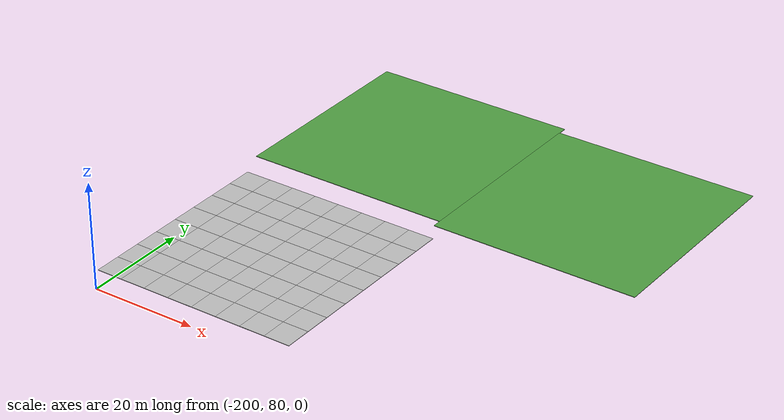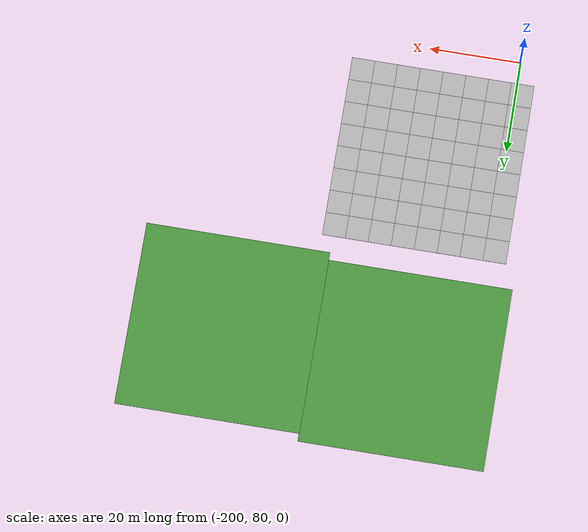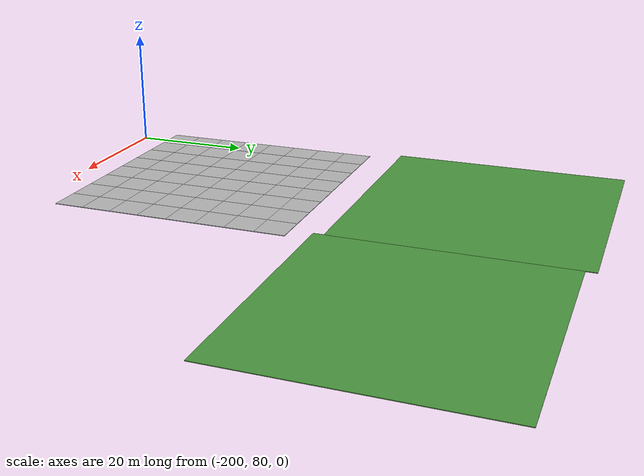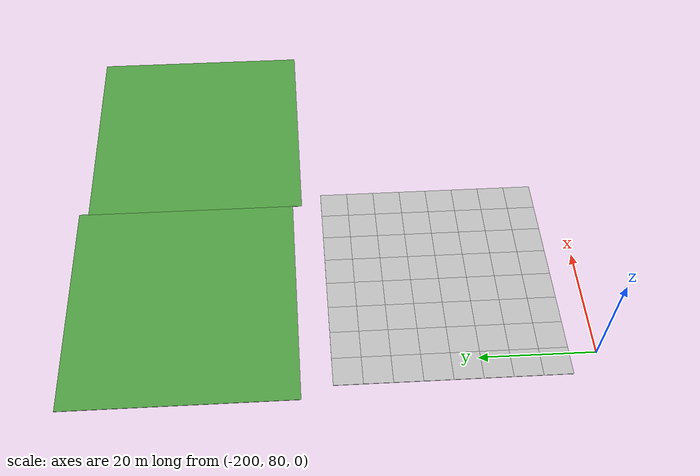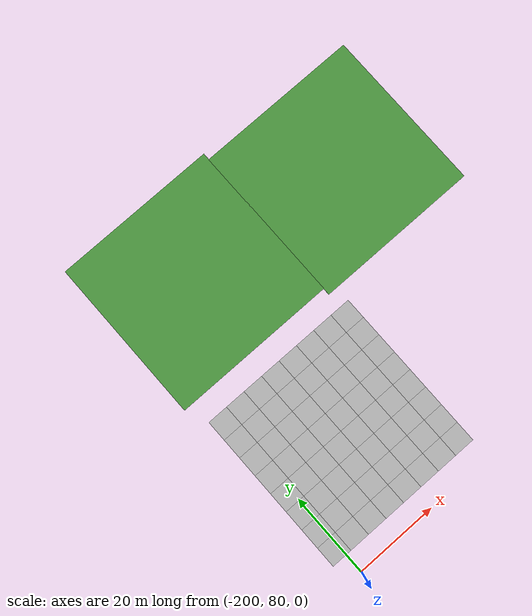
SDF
<sdf version="1.7">
 <world name="default">
  <model name="mud_plane_40x40_23">
   <model name="mud_plane_20x20">
    <model name="mud_plane">
     <static>1</static>
     <link name="link">
      <collision name="collision"><geometry><box><size>10 10 0.1</size></box></geometry></collision>
      <visual name="visual_1">
       <pose>-2.5 2.5 -0.05 0 -0 0</pose>
       <cast_shadows>0</cast_shadows>
       <geometry><box><size>5 5 0.1</size></box></geometry>
       <material>
        <script>
         <uri>model://mud_plane/materials/scripts</uri>
         <uri>model://mud_plane/materials/textures</uri>
         <name>vrc/mud</name>
        </script>
       </material>
      </visual>
      <visual name="visual_2">
       <pose>2.5 2.5 -0.05 0 -0 0</pose>
       <cast_shadows>0</cast_shadows>
       <geometry><box><size>5 5 0.1</size></box></geometry>
       <material>
        <script>
         <uri>model://mud_plane/materials/scripts</uri>
         <uri>model://mud_plane/materials/textures</uri>
         <name>vrc/mud</name>
        </script>
       </material>
      </visual>
      <visual name="visual_3">
       <pose>2.5 -2.5 -0.05 0 -0 0</pose>
       <cast_shadows>0</cast_shadows>
       <geometry><box><size>5 5 0.1</size></box></geometry>
       <material>
        <script>
         <uri>model://mud_plane/materials/scripts</uri>
         <uri>model://mud_plane/materials/textures</uri>
         <name>vrc/mud</name>
        </script>
       </material>
      </visual>
      <visual name="visual_4">
       <pose>-2.5 -2.5 -0.05 0 -0 0</pose>
       <cast_shadows>0</cast_shadows>
       <geometry><box><size>5 5 0.1</size></box></geometry>
       <material>
        <script>
         <uri>model://mud_plane/materials/scripts</uri>
         <uri>model://mud_plane/materials/textures</uri>
         <name>vrc/mud</name>
        </script>
       </material>
      </visual>
     </link>
     <pose>-4.99986 -4.99991 0 0 -0 0</pose>
    </model>
    <model name="mud_plane_0">
     <static>1</static>
     <link name="link">
      <collision name="collision"><geometry><box><size>10 10 0.1</size></box></geometry></collision>
      <visual name="visual_1">
       <pose>-2.5 2.5 -0.05 0 -0 0</pose>
       <cast_shadows>0</cast_shadows>
       <geometry><box><size>5 5 0.1</size></box></geometry>
       <material>
        <script>
         <uri>model://mud_plane/materials/scripts</uri>
         <uri>model://mud_plane/materials/textures</uri>
         <name>vrc/mud</name>
        </script>
       </material>
      </visual>
      <visual name="visual_2">
       <pose>2.5 2.5 -0.05 0 -0 0</pose>
       <cast_shadows>0</cast_shadows>
       <geometry><box><size>5 5 0.1</size></box></geometry>
       <material>
        <script>
         <uri>model://mud_plane/materials/scripts</uri>
         <uri>model://mud_plane/materials/textures</uri>
         <name>vrc/mud</name>
        </script>
       </material>
      </visual>
      <visual name="visual_3">
       <pose>2.5 -2.5 -0.05 0 -0 0</pose>
       <cast_shadows>0</cast_shadows>
       <geometry><box><size>5 5 0.1</size></box></geometry>
       <material>
        <script>
         <uri>model://mud_plane/materials/scripts</uri>
         <uri>model://mud_plane/materials/textures</uri>
         <name>vrc/mud</name>
        </script>
       </material>
      </visual>
      <visual name="visual_4">
       <pose>-2.5 -2.5 -0.05 0 -0 0</pose>
       <cast_shadows>0</cast_shadows>
       <geometry><box><size>5 5 0.1</size></box></geometry>
       <material>
        <script>
         <uri>model://mud_plane/materials/scripts</uri>
         <uri>model://mud_plane/materials/textures</uri>
         <name>vrc/mud</name>
        </script>
       </material>
      </visual>
     </link>
     <pose>-4.99946 4.99954 0 0 -0 0</pose>
    </model>
    <model name="mud_plane_1">
     <static>1</static>
     <link name="link">
      <collision name="collision"><geometry><box><size>10 10 0.1</size></box></geometry></collision>
      <visual name="visual_1">
       <pose>-2.5 2.5 -0.05 0 -0 0</pose>
       <cast_shadows>0</cast_shadows>
       <geometry><box><size>5 5 0.1</size></box></geometry>
       <material>
        <script>
         <uri>model://mud_plane/materials/scripts</uri>
         <uri>model://mud_plane/materials/textures</uri>
         <name>vrc/mud</name>
        </script>
       </material>
      </visual>
      <visual name="visual_2">
       <pose>2.5 2.5 -0.05 0 -0 0</pose>
       <cast_shadows>0</cast_shadows>
       <geometry><box><size>5 5 0.1</size></box></geometry>
       <material>
        <script>
         <uri>model://mud_plane/materials/scripts</uri>
         <uri>model://mud_plane/materials/textures</uri>
         <name>vrc/mud</name>
        </script>
       </material>
      </visual>
      <visual name="visual_3">
       <pose>2.5 -2.5 -0.05 0 -0 0</pose>
       <cast_shadows>0</cast_shadows>
       <geometry><box><size>5 5 0.1</size></box></geometry>
       <material>
        <script>
         <uri>model://mud_plane/materials/scripts</uri>
         <uri>model://mud_plane/materials/textures</uri>
         <name>vrc/mud</name>
        </script>
       </material>
      </visual>
      <visual name="visual_4">
       <pose>-2.5 -2.5 -0.05 0 -0 0</pose>
       <cast_shadows>0</cast_shadows>
       <geometry><box><size>5 5 0.1</size></box></geometry>
       <material>
        <script>
         <uri>model://mud_plane/materials/scripts</uri>
         <uri>model://mud_plane/materials/textures</uri>
         <name>vrc/mud</name>
        </script>
       </material>
      </visual>
     </link>
     <pose>4.99964 -4.99949 0 0 -0 0</pose>
    </model>
    <model name="mud_plane_2">
     <static>1</static>
     <link name="link">
      <collision name="collision"><geometry><box><size>10 10 0.1</size></box></geometry></collision>
      <visual name="visual_1">
       <pose>-2.5 2.5 -0.05 0 -0 0</pose>
       <cast_shadows>0</cast_shadows>
       <geometry><box><size>5 5 0.1</size></box></geometry>
       <material>
        <script>
         <uri>model://mud_plane/materials/scripts</uri>
         <uri>model://mud_plane/materials/textures</uri>
         <name>vrc/mud</name>
        </script>
       </material>
      </visual>
      <visual name="visual_2">
       <pose>2.5 2.5 -0.05 0 -0 0</pose>
       <cast_shadows>0</cast_shadows>
       <geometry><box><size>5 5 0.1</size></box></geometry>
       <material>
        <script>
         <uri>model://mud_plane/materials/scripts</uri>
         <uri>model://mud_plane/materials/textures</uri>
         <name>vrc/mud</name>
        </script>
       </material>
      </visual>
      <visual name="visual_3">
       <pose>2.5 -2.5 -0.05 0 -0 0</pose>
       <cast_shadows>0</cast_shadows>
       <geometry><box><size>5 5 0.1</size></box></geometry>
       <material>
        <script>
         <uri>model://mud_plane/materials/scripts</uri>
         <uri>model://mud_plane/materials/textures</uri>
         <name>vrc/mud</name>
        </script>
       </material>
      </visual>
      <visual name="visual_4">
       <pose>-2.5 -2.5 -0.05 0 -0 0</pose>
       <cast_shadows>0</cast_shadows>
       <geometry><box><size>5 5 0.1</size></box></geometry>
       <material>
        <script>
         <uri>model://mud_plane/materials/scripts</uri>
         <uri>model://mud_plane/materials/textures</uri>
         <name>vrc/mud</name>
        </script>
       </material>
      </visual>
     </link>
     <pose>4.99967 4.99986 0 0 -0 0</pose>
    </model>
    <static>0</static>
    <pose>-9.99895 9.99843 0 0 -0 0</pose>
   </model>
   <model name="mud_plane_20x20_0">
    <model name="mud_plane">
     <static>1</static>
     <link name="link">
      <collision name="collision"><geometry><box><size>10 10 0.1</size></box></geometry></collision>
      <visual name="visual_1">
       <pose>-2.5 2.5 -0.05 0 -0 0</pose>
       <cast_shadows>0</cast_shadows>
       <geometry><box><size>5 5 0.1</size></box></geometry>
       <material>
        <script>
         <uri>model://mud_plane/materials/scripts</uri>
         <uri>model://mud_plane/materials/textures</uri>
         <name>vrc/mud</name>
        </script>
       </material>
      </visual>
      <visual name="visual_2">
       <pose>2.5 2.5 -0.05 0 -0 0</pose>
       <cast_shadows>0</cast_shadows>
       <geometry><box><size>5 5 0.1</size></box></geometry>
       <material>
        <script>
         <uri>model://mud_plane/materials/scripts</uri>
         <uri>model://mud_plane/materials/textures</uri>
         <name>vrc/mud</name>
        </script>
       </material>
      </visual>
      <visual name="visual_3">
       <pose>2.5 -2.5 -0.05 0 -0 0</pose>
       <cast_shadows>0</cast_shadows>
       <geometry><box><size>5 5 0.1</size></box></geometry>
       <material>
        <script>
         <uri>model://mud_plane/materials/scripts</uri>
         <uri>model://mud_plane/materials/textures</uri>
         <name>vrc/mud</name>
        </script>
       </material>
      </visual>
      <visual name="visual_4">
       <pose>-2.5 -2.5 -0.05 0 -0 0</pose>
       <cast_shadows>0</cast_shadows>
       <geometry><box><size>5 5 0.1</size></box></geometry>
       <material>
        <script>
         <uri>model://mud_plane/materials/scripts</uri>
         <uri>model://mud_plane/materials/textures</uri>
         <name>vrc/mud</name>
        </script>
       </material>
      </visual>
     </link>
     <pose>-4.99986 -4.99991 0 0 -0 0</pose>
    </model>
    <model name="mud_plane_0">
     <static>1</static>
     <link name="link">
      <collision name="collision"><geometry><box><size>10 10 0.1</size></box></geometry></collision>
      <visual name="visual_1">
       <pose>-2.5 2.5 -0.05 0 -0 0</pose>
       <cast_shadows>0</cast_shadows>
       <geometry><box><size>5 5 0.1</size></box></geometry>
       <material>
        <script>
         <uri>model://mud_plane/materials/scripts</uri>
         <uri>model://mud_plane/materials/textures</uri>
         <name>vrc/mud</name>
        </script>
       </material>
      </visual>
      <visual name="visual_2">
       <pose>2.5 2.5 -0.05 0 -0 0</pose>
       <cast_shadows>0</cast_shadows>
       <geometry><box><size>5 5 0.1</size></box></geometry>
       <material>
        <script>
         <uri>model://mud_plane/materials/scripts</uri>
         <uri>model://mud_plane/materials/textures</uri>
         <name>vrc/mud</name>
        </script>
       </material>
      </visual>
      <visual name="visual_3">
       <pose>2.5 -2.5 -0.05 0 -0 0</pose>
       <cast_shadows>0</cast_shadows>
       <geometry><box><size>5 5 0.1</size></box></geometry>
       <material>
        <script>
         <uri>model://mud_plane/materials/scripts</uri>
         <uri>model://mud_plane/materials/textures</uri>
         <name>vrc/mud</name>
        </script>
       </material>
      </visual>
      <visual name="visual_4">
       <pose>-2.5 -2.5 -0.05 0 -0 0</pose>
       <cast_shadows>0</cast_shadows>
       <geometry><box><size>5 5 0.1</size></box></geometry>
       <material>
        <script>
         <uri>model://mud_plane/materials/scripts</uri>
         <uri>model://mud_plane/materials/textures</uri>
         <name>vrc/mud</name>
        </script>
       </material>
      </visual>
     </link>
     <pose>-4.99946 4.99954 0 0 -0 0</pose>
    </model>
    <model name="mud_plane_1">
     <static>1</static>
     <link name="link">
      <collision name="collision"><geometry><box><size>10 10 0.1</size></box></geometry></collision>
      <visual name="visual_1">
       <pose>-2.5 2.5 -0.05 0 -0 0</pose>
       <cast_shadows>0</cast_shadows>
       <geometry><box><size>5 5 0.1</size></box></geometry>
       <material>
        <script>
         <uri>model://mud_plane/materials/scripts</uri>
         <uri>model://mud_plane/materials/textures</uri>
         <name>vrc/mud</name>
        </script>
       </material>
      </visual>
      <visual name="visual_2">
       <pose>2.5 2.5 -0.05 0 -0 0</pose>
       <cast_shadows>0</cast_shadows>
       <geometry><box><size>5 5 0.1</size></box></geometry>
       <material>
        <script>
         <uri>model://mud_plane/materials/scripts</uri>
         <uri>model://mud_plane/materials/textures</uri>
         <name>vrc/mud</name>
        </script>
       </material>
      </visual>
      <visual name="visual_3">
       <pose>2.5 -2.5 -0.05 0 -0 0</pose>
       <cast_shadows>0</cast_shadows>
       <geometry><box><size>5 5 0.1</size></box></geometry>
       <material>
        <script>
         <uri>model://mud_plane/materials/scripts</uri>
         <uri>model://mud_plane/materials/textures</uri>
         <name>vrc/mud</name>
        </script>
       </material>
      </visual>
      <visual name="visual_4">
       <pose>-2.5 -2.5 -0.05 0 -0 0</pose>
       <cast_shadows>0</cast_shadows>
       <geometry><box><size>5 5 0.1</size></box></geometry>
       <material>
        <script>
         <uri>model://mud_plane/materials/scripts</uri>
         <uri>model://mud_plane/materials/textures</uri>
         <name>vrc/mud</name>
        </script>
       </material>
      </visual>
     </link>
     <pose>4.99964 -4.99949 0 0 -0 0</pose>
    </model>
    <model name="mud_plane_2">
     <static>1</static>
     <link name="link">
      <collision name="collision"><geometry><box><size>10 10 0.1</size></box></geometry></collision>
      <visual name="visual_1">
       <pose>-2.5 2.5 -0.05 0 -0 0</pose>
       <cast_shadows>0</cast_shadows>
       <geometry><box><size>5 5 0.1</size></box></geometry>
       <material>
        <script>
         <uri>model://mud_plane/materials/scripts</uri>
         <uri>model://mud_plane/materials/textures</uri>
         <name>vrc/mud</name>
        </script>
       </material>
      </visual>
      <visual name="visual_2">
       <pose>2.5 2.5 -0.05 0 -0 0</pose>
       <cast_shadows>0</cast_shadows>
       <geometry><box><size>5 5 0.1</size></box></geometry>
       <material>
        <script>
         <uri>model://mud_plane/materials/scripts</uri>
         <uri>model://mud_plane/materials/textures</uri>
         <name>vrc/mud</name>
        </script>
       </material>
      </visual>
      <visual name="visual_3">
       <pose>2.5 -2.5 -0.05 0 -0 0</pose>
       <cast_shadows>0</cast_shadows>
       <geometry><box><size>5 5 0.1</size></box></geometry>
       <material>
        <script>
         <uri>model://mud_plane/materials/scripts</uri>
         <uri>model://mud_plane/materials/textures</uri>
         <name>vrc/mud</name>
        </script>
       </material>
      </visual>
      <visual name="visual_4">
       <pose>-2.5 -2.5 -0.05 0 -0 0</pose>
       <cast_shadows>0</cast_shadows>
       <geometry><box><size>5 5 0.1</size></box></geometry>
       <material>
        <script>
         <uri>model://mud_plane/materials/scripts</uri>
         <uri>model://mud_plane/materials/textures</uri>
         <name>vrc/mud</name>
        </script>
       </material>
      </visual>
     </link>
     <pose>4.99967 4.99986 0 0 -0 0</pose>
    </model>
    <static>0</static>
    <pose>9.99933 9.9997 0 0 -0 0</pose>
   </model>
   <model name="mud_plane_20x20_1">
    <model name="mud_plane">
     <static>1</static>
     <link name="link">
      <collision name="collision"><geometry><box><size>10 10 0.1</size></box></geometry></collision>
      <visual name="visual_1">
       <pose>-2.5 2.5 -0.05 0 -0 0</pose>
       <cast_shadows>0</cast_shadows>
       <geometry><box><size>5 5 0.1</size></box></geometry>
       <material>
        <script>
         <uri>model://mud_plane/materials/scripts</uri>
         <uri>model://mud_plane/materials/textures</uri>
         <name>vrc/mud</name>
        </script>
       </material>
      </visual>
      <visual name="visual_2">
       <pose>2.5 2.5 -0.05 0 -0 0</pose>
       <cast_shadows>0</cast_shadows>
       <geometry><box><size>5 5 0.1</size></box></geometry>
       <material>
        <script>
         <uri>model://mud_plane/materials/scripts</uri>
         <uri>model://mud_plane/materials/textures</uri>
         <name>vrc/mud</name>
        </script>
       </material>
      </visual>
      <visual name="visual_3">
       <pose>2.5 -2.5 -0.05 0 -0 0</pose>
       <cast_shadows>0</cast_shadows>
       <geometry><box><size>5 5 0.1</size></box></geometry>
       <material>
        <script>
         <uri>model://mud_plane/materials/scripts</uri>
         <uri>model://mud_plane/materials/textures</uri>
         <name>vrc/mud</name>
        </script>
       </material>
      </visual>
      <visual name="visual_4">
       <pose>-2.5 -2.5 -0.05 0 -0 0</pose>
       <cast_shadows>0</cast_shadows>
       <geometry><box><size>5 5 0.1</size></box></geometry>
       <material>
        <script>
         <uri>model://mud_plane/materials/scripts</uri>
         <uri>model://mud_plane/materials/textures</uri>
         <name>vrc/mud</name>
        </script>
       </material>
      </visual>
     </link>
     <pose>-4.99986 -4.99991 0 0 -0 0</pose>
    </model>
    <model name="mud_plane_0">
     <static>1</static>
     <link name="link">
      <collision name="collision"><geometry><box><size>10 10 0.1</size></box></geometry></collision>
      <visual name="visual_1">
       <pose>-2.5 2.5 -0.05 0 -0 0</pose>
       <cast_shadows>0</cast_shadows>
       <geometry><box><size>5 5 0.1</size></box></geometry>
       <material>
        <script>
         <uri>model://mud_plane/materials/scripts</uri>
         <uri>model://mud_plane/materials/textures</uri>
         <name>vrc/mud</name>
        </script>
       </material>
      </visual>
      <visual name="visual_2">
       <pose>2.5 2.5 -0.05 0 -0 0</pose>
       <cast_shadows>0</cast_shadows>
       <geometry><box><size>5 5 0.1</size></box></geometry>
       <material>
        <script>
         <uri>model://mud_plane/materials/scripts</uri>
         <uri>model://mud_plane/materials/textures</uri>
         <name>vrc/mud</name>
        </script>
       </material>
      </visual>
      <visual name="visual_3">
       <pose>2.5 -2.5 -0.05 0 -0 0</pose>
       <cast_shadows>0</cast_shadows>
       <geometry><box><size>5 5 0.1</size></box></geometry>
       <material>
        <script>
         <uri>model://mud_plane/materials/scripts</uri>
         <uri>model://mud_plane/materials/textures</uri>
         <name>vrc/mud</name>
        </script>
       </material>
      </visual>
      <visual name="visual_4">
       <pose>-2.5 -2.5 -0.05 0 -0 0</pose>
       <cast_shadows>0</cast_shadows>
       <geometry><box><size>5 5 0.1</size></box></geometry>
       <material>
        <script>
         <uri>model://mud_plane/materials/scripts</uri>
         <uri>model://mud_plane/materials/textures</uri>
         <name>vrc/mud</name>
        </script>
       </material>
      </visual>
     </link>
     <pose>-4.99946 4.99954 0 0 -0 0</pose>
    </model>
    <model name="mud_plane_1">
     <static>1</static>
     <link name="link">
      <collision name="collision"><geometry><box><size>10 10 0.1</size></box></geometry></collision>
      <visual name="visual_1">
       <pose>-2.5 2.5 -0.05 0 -0 0</pose>
       <cast_shadows>0</cast_shadows>
       <geometry><box><size>5 5 0.1</size></box></geometry>
       <material>
        <script>
         <uri>model://mud_plane/materials/scripts</uri>
         <uri>model://mud_plane/materials/textures</uri>
         <name>vrc/mud</name>
        </script>
       </material>
      </visual>
      <visual name="visual_2">
       <pose>2.5 2.5 -0.05 0 -0 0</pose>
       <cast_shadows>0</cast_shadows>
       <geometry><box><size>5 5 0.1</size></box></geometry>
       <material>
        <script>
         <uri>model://mud_plane/materials/scripts</uri>
         <uri>model://mud_plane/materials/textures</uri>
         <name>vrc/mud</name>
        </script>
       </material>
      </visual>
      <visual name="visual_3">
       <pose>2.5 -2.5 -0.05 0 -0 0</pose>
       <cast_shadows>0</cast_shadows>
       <geometry><box><size>5 5 0.1</size></box></geometry>
       <material>
        <script>
         <uri>model://mud_plane/materials/scripts</uri>
         <uri>model://mud_plane/materials/textures</uri>
         <name>vrc/mud</name>
        </script>
       </material>
      </visual>
      <visual name="visual_4">
       <pose>-2.5 -2.5 -0.05 0 -0 0</pose>
       <cast_shadows>0</cast_shadows>
       <geometry><box><size>5 5 0.1</size></box></geometry>
       <material>
        <script>
         <uri>model://mud_plane/materials/scripts</uri>
         <uri>model://mud_plane/materials/textures</uri>
         <name>vrc/mud</name>
        </script>
       </material>
      </visual>
     </link>
     <pose>4.99964 -4.99949 0 0 -0 0</pose>
    </model>
    <model name="mud_plane_2">
     <static>1</static>
     <link name="link">
      <collision name="collision"><geometry><box><size>10 10 0.1</size></box></geometry></collision>
      <visual name="visual_1">
       <pose>-2.5 2.5 -0.05 0 -0 0</pose>
       <cast_shadows>0</cast_shadows>
       <geometry><box><size>5 5 0.1</size></box></geometry>
       <material>
        <script>
         <uri>model://mud_plane/materials/scripts</uri>
         <uri>model://mud_plane/materials/textures</uri>
         <name>vrc/mud</name>
        </script>
       </material>
      </visual>
      <visual name="visual_2">
       <pose>2.5 2.5 -0.05 0 -0 0</pose>
       <cast_shadows>0</cast_shadows>
       <geometry><box><size>5 5 0.1</size></box></geometry>
       <material>
        <script>
         <uri>model://mud_plane/materials/scripts</uri>
         <uri>model://mud_plane/materials/textures</uri>
         <name>vrc/mud</name>
        </script>
       </material>
      </visual>
      <visual name="visual_3">
       <pose>2.5 -2.5 -0.05 0 -0 0</pose>
       <cast_shadows>0</cast_shadows>
       <geometry><box><size>5 5 0.1</size></box></geometry>
       <material>
        <script>
         <uri>model://mud_plane/materials/scripts</uri>
         <uri>model://mud_plane/materials/textures</uri>
         <name>vrc/mud</name>
        </script>
       </material>
      </visual>
      <visual name="visual_4">
       <pose>-2.5 -2.5 -0.05 0 -0 0</pose>
       <cast_shadows>0</cast_shadows>
       <geometry><box><size>5 5 0.1</size></box></geometry>
       <material>
        <script>
         <uri>model://mud_plane/materials/scripts</uri>
         <uri>model://mud_plane/materials/textures</uri>
         <name>vrc/mud</name>
        </script>
       </material>
      </visual>
     </link>
     <pose>4.99967 4.99986 0 0 -0 0</pose>
    </model>
    <static>0</static>
    <pose>9.9993 -9.99877 0 0 -0 0</pose>
   </model>
   <model name="mud_plane_20x20_2">
    <model name="mud_plane">
     <static>1</static>
     <link name="link">
      <collision name="collision"><geometry><box><size>10 10 0.1</size></box></geometry></collision>
      <visual name="visual_1">
       <pose>-2.5 2.5 -0.05 0 -0 0</pose>
       <cast_shadows>0</cast_shadows>
       <geometry><box><size>5 5 0.1</size></box></geometry>
       <material>
        <script>
         <uri>model://mud_plane/materials/scripts</uri>
         <uri>model://mud_plane/materials/textures</uri>
         <name>vrc/mud</name>
        </script>
       </material>
      </visual>
      <visual name="visual_2">
       <pose>2.5 2.5 -0.05 0 -0 0</pose>
       <cast_shadows>0</cast_shadows>
       <geometry><box><size>5 5 0.1</size></box></geometry>
       <material>
        <script>
         <uri>model://mud_plane/materials/scripts</uri>
         <uri>model://mud_plane/materials/textures</uri>
         <name>vrc/mud</name>
        </script>
       </material>
      </visual>
      <visual name="visual_3">
       <pose>2.5 -2.5 -0.05 0 -0 0</pose>
       <cast_shadows>0</cast_shadows>
       <geometry><box><size>5 5 0.1</size></box></geometry>
       <material>
        <script>
         <uri>model://mud_plane/materials/scripts</uri>
         <uri>model://mud_plane/materials/textures</uri>
         <name>vrc/mud</name>
        </script>
       </material>
      </visual>
      <visual name="visual_4">
       <pose>-2.5 -2.5 -0.05 0 -0 0</pose>
       <cast_shadows>0</cast_shadows>
       <geometry><box><size>5 5 0.1</size></box></geometry>
       <material>
        <script>
         <uri>model://mud_plane/materials/scripts</uri>
         <uri>model://mud_plane/materials/textures</uri>
         <name>vrc/mud</name>
        </script>
       </material>
      </visual>
     </link>
     <pose>-4.99986 -4.99991 0 0 -0 0</pose>
    </model>
    <model name="mud_plane_0">
     <static>1</static>
     <link name="link">
      <collision name="collision"><geometry><box><size>10 10 0.1</size></box></geometry></collision>
      <visual name="visual_1">
       <pose>-2.5 2.5 -0.05 0 -0 0</pose>
       <cast_shadows>0</cast_shadows>
       <geometry><box><size>5 5 0.1</size></box></geometry>
       <material>
        <script>
         <uri>model://mud_plane/materials/scripts</uri>
         <uri>model://mud_plane/materials/textures</uri>
         <name>vrc/mud</name>
        </script>
       </material>
      </visual>
      <visual name="visual_2">
       <pose>2.5 2.5 -0.05 0 -0 0</pose>
       <cast_shadows>0</cast_shadows>
       <geometry><box><size>5 5 0.1</size></box></geometry>
       <material>
        <script>
         <uri>model://mud_plane/materials/scripts</uri>
         <uri>model://mud_plane/materials/textures</uri>
         <name>vrc/mud</name>
        </script>
       </material>
      </visual>
      <visual name="visual_3">
       <pose>2.5 -2.5 -0.05 0 -0 0</pose>
       <cast_shadows>0</cast_shadows>
       <geometry><box><size>5 5 0.1</size></box></geometry>
       <material>
        <script>
         <uri>model://mud_plane/materials/scripts</uri>
         <uri>model://mud_plane/materials/textures</uri>
         <name>vrc/mud</name>
        </script>
       </material>
      </visual>
      <visual name="visual_4">
       <pose>-2.5 -2.5 -0.05 0 -0 0</pose>
       <cast_shadows>0</cast_shadows>
       <geometry><box><size>5 5 0.1</size></box></geometry>
       <material>
        <script>
         <uri>model://mud_plane/materials/scripts</uri>
         <uri>model://mud_plane/materials/textures</uri>
         <name>vrc/mud</name>
        </script>
       </material>
      </visual>
     </link>
     <pose>-4.99946 4.99954 0 0 -0 0</pose>
    </model>
    <model name="mud_plane_1">
     <static>1</static>
     <link name="link">
      <collision name="collision"><geometry><box><size>10 10 0.1</size></box></geometry></collision>
      <visual name="visual_1">
       <pose>-2.5 2.5 -0.05 0 -0 0</pose>
       <cast_shadows>0</cast_shadows>
       <geometry><box><size>5 5 0.1</size></box></geometry>
       <material>
        <script>
         <uri>model://mud_plane/materials/scripts</uri>
         <uri>model://mud_plane/materials/textures</uri>
         <name>vrc/mud</name>
        </script>
       </material>
      </visual>
      <visual name="visual_2">
       <pose>2.5 2.5 -0.05 0 -0 0</pose>
       <cast_shadows>0</cast_shadows>
       <geometry><box><size>5 5 0.1</size></box></geometry>
       <material>
        <script>
         <uri>model://mud_plane/materials/scripts</uri>
         <uri>model://mud_plane/materials/textures</uri>
         <name>vrc/mud</name>
        </script>
       </material>
      </visual>
      <visual name="visual_3">
       <pose>2.5 -2.5 -0.05 0 -0 0</pose>
       <cast_shadows>0</cast_shadows>
       <geometry><box><size>5 5 0.1</size></box></geometry>
       <material>
        <script>
         <uri>model://mud_plane/materials/scripts</uri>
         <uri>model://mud_plane/materials/textures</uri>
         <name>vrc/mud</name>
        </script>
       </material>
      </visual>
      <visual name="visual_4">
       <pose>-2.5 -2.5 -0.05 0 -0 0</pose>
       <cast_shadows>0</cast_shadows>
       <geometry><box><size>5 5 0.1</size></box></geometry>
       <material>
        <script>
         <uri>model://mud_plane/materials/scripts</uri>
         <uri>model://mud_plane/materials/textures</uri>
         <name>vrc/mud</name>
        </script>
       </material>
      </visual>
     </link>
     <pose>4.99964 -4.99949 0 0 -0 0</pose>
    </model>
    <model name="mud_plane_2">
     <static>1</static>
     <link name="link">
      <collision name="collision"><geometry><box><size>10 10 0.1</size></box></geometry></collision>
      <visual name="visual_1">
       <pose>-2.5 2.5 -0.05 0 -0 0</pose>
       <cast_shadows>0</cast_shadows>
       <geometry><box><size>5 5 0.1</size></box></geometry>
       <material>
        <script>
         <uri>model://mud_plane/materials/scripts</uri>
         <uri>model://mud_plane/materials/textures</uri>
         <name>vrc/mud</name>
        </script>
       </material>
      </visual>
      <visual name="visual_2">
       <pose>2.5 2.5 -0.05 0 -0 0</pose>
       <cast_shadows>0</cast_shadows>
       <geometry><box><size>5 5 0.1</size></box></geometry>
       <material>
        <script>
         <uri>model://mud_plane/materials/scripts</uri>
         <uri>model://mud_plane/materials/textures</uri>
         <name>vrc/mud</name>
        </script>
       </material>
      </visual>
      <visual name="visual_3">
       <pose>2.5 -2.5 -0.05 0 -0 0</pose>
       <cast_shadows>0</cast_shadows>
       <geometry><box><size>5 5 0.1</size></box></geometry>
       <material>
        <script>
         <uri>model://mud_plane/materials/scripts</uri>
         <uri>model://mud_plane/materials/textures</uri>
         <name>vrc/mud</name>
        </script>
       </material>
      </visual>
      <visual name="visual_4">
       <pose>-2.5 -2.5 -0.05 0 -0 0</pose>
       <cast_shadows>0</cast_shadows>
       <geometry><box><size>5 5 0.1</size></box></geometry>
       <material>
        <script>
         <uri>model://mud_plane/materials/scripts</uri>
         <uri>model://mud_plane/materials/textures</uri>
         <name>vrc/mud</name>
        </script>
       </material>
      </visual>
     </link>
     <pose>4.99967 4.99986 0 0 -0 0</pose>
    </model>
    <static>0</static>
    <pose>-9.99969 -9.99935 0 0 -0 0</pose>
   </model>
   <static>0</static>
   <pose>-183.726 104.658 0 0 -0 0</pose>
  </model>
  <model name="grass_plane_40x40_12">
   <pose>-146.068 148.312 -0.05 0 -0 0</pose>
   <static>1</static>
   <link name="link">
    <collision name="collision"><geometry><box><size>40 40 0.1</size></box></geometry></collision>
    <visual name="grass">
     <cast_shadows>0</cast_shadows>
     <geometry><box><size>40 40 0.1</size></box></geometry>
     <material>
      <script><uri>file://media/materials/scripts/gazebo.material</uri><name>Gazebo/Grass</name></script>
     </material>
    </visual>
   </link>
  </model>
  <model name="grass_plane_40x40_13">
   <pose>-185.981 150.003 -0.05 0 -0 0</pose>
   <static>1</static>
   <link name="link">
    <collision name="collision"><geometry><box><size>40 40 0.1</size></box></geometry></collision>
    <visual name="grass">
     <cast_shadows>0</cast_shadows>
     <geometry><box><size>40 40 0.1</size></box></geometry>
     <material>
      <script><uri>file://media/materials/scripts/gazebo.material</uri><name>Gazebo/Grass</name></script>
     </material>
    </visual>
   </link>
  </model>
 </world>
</sdf>
